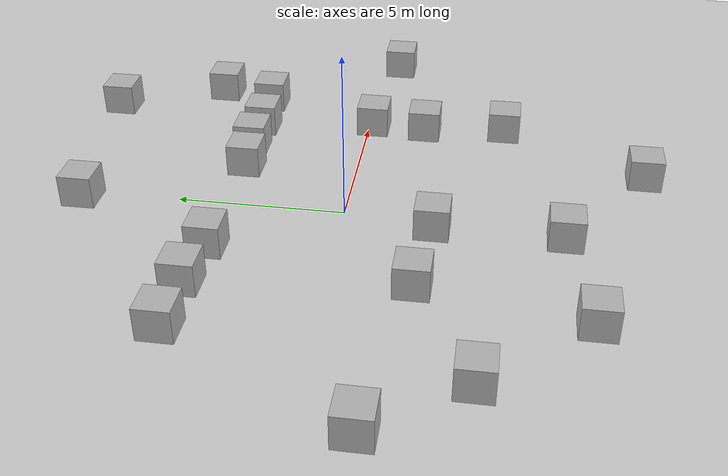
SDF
<sdf version='1.9'>
  <world name='plane'>
    <physics name='1ms' type='bullet'>
      <max_step_size>0.001</max_step_size>
      <real_time_factor>1</real_time_factor>
      <real_time_update_rate>1000</real_time_update_rate>
    </physics>
    <plugin name='gz::sim::systems::Physics' filename='gz-sim-physics-system'/>
    <plugin name='gz::sim::systems::UserCommands' filename='gz-sim-user-commands-system'/>
    <plugin name='gz::sim::systems::SceneBroadcaster' filename='gz-sim-scene-broadcaster-system'/>
    <gravity>0 0 -9.8</gravity>
    <magnetic_field>6e-06 2.3e-05 -4.2e-05</magnetic_field>
    <atmosphere type='adiabatic'/>
    <scene>
      <ambient>0.4 0.4 0.4 1</ambient>
      <background>0.7 0.7 0.7 1</background>
      <shadows>true</shadows>
    </scene>
    <model name='ground_plane'>
      <static>true</static>
      <link name='link'>
        <collision name='collision'>
          <geometry>
            <plane>
              <normal>0 0 1</normal>
              <size>100 100</size>
            </plane>
          </geometry>
          <surface>
            <friction>
              <ode/>
            </friction>
            <bounce/>
            <contact/>
          </surface>
        </collision>
        <visual name='visual'>
          <geometry>
            <plane>
              <normal>0 0 1</normal>
              <size>100 100</size>
            </plane>
          </geometry>
          <material>
            <ambient>0.8 0.8 0.8 1</ambient>
            <diffuse>0.8 0.8 0.8 1</diffuse>
            <specular>0.8 0.8 0.8 1</specular>
          </material>
        </visual>
        <pose>0 0 0 0 -0 0</pose>
        <inertial>
          <pose>0 0 0 0 -0 0</pose>
          <mass>1</mass>
          <inertia>
            <ixx>1</ixx>
            <ixy>0</ixy>
            <ixz>0</ixz>
            <iyy>1</iyy>
            <iyz>0</iyz>
            <izz>1</izz>
          </inertia>
        </inertial>
        <enable_wind>false</enable_wind>
      </link>
      <pose>0 0 0 0 -0 0</pose>
      <self_collide>false</self_collide>
    </model>
    <model name='box'>
      <pose>2.06186 3.42093 0.5 0 0 -0</pose>
      <link name='box_link'>
        <inertial>
          <inertia>
            <ixx>0.16666</ixx>
            <ixy>0</ixy>
            <ixz>0</ixz>
            <iyy>0.16666</iyy>
            <iyz>0</iyz>
            <izz>0.16666</izz>
          </inertia>
          <mass>1</mass>
          <pose>0 0 0 0 -0 0</pose>
        </inertial>
        <collision name='box_collision'>
          <geometry>
            <box>
              <size>1 1 1</size>
            </box>
          </geometry>
          <surface>
            <friction>
              <ode/>
            </friction>
            <bounce/>
            <contact/>
          </surface>
        </collision>
        <visual name='box_visual'>
          <geometry>
            <box>
              <size>1 1 1</size>
            </box>
          </geometry>
          <material>
            <ambient>0.3 0.3 0.3 1</ambient>
            <diffuse>0.7 0.7 0.7 1</diffuse>
            <specular>1 1 1 1</specular>
          </material>
        </visual>
        <pose>0 0 0 0 -0 0</pose>
        <enable_wind>false</enable_wind>
      </link>
      <static>false</static>
      <self_collide>false</self_collide>
    </model>
    <model name='box_0'>
      <pose>3.34366 3.53367 0.5 0 0 -0</pose>
      <link name='box_link'>
        <inertial>
          <inertia>
            <ixx>0.16666</ixx>
            <ixy>0</ixy>
            <ixz>0</ixz>
            <iyy>0.16666</iyy>
            <iyz>0</iyz>
            <izz>0.16666</izz>
          </inertia>
          <mass>1</mass>
          <pose>0 0 0 0 -0 0</pose>
        </inertial>
        <collision name='box_collision'>
          <geometry>
            <box>
              <size>1 1 1</size>
            </box>
          </geometry>
          <surface>
            <friction>
              <ode/>
            </friction>
            <bounce/>
            <contact/>
          </surface>
        </collision>
        <visual name='box_visual'>
          <geometry>
            <box>
              <size>1 1 1</size>
            </box>
          </geometry>
          <material>
            <ambient>0.3 0.3 0.3 1</ambient>
            <diffuse>0.7 0.7 0.7 1</diffuse>
            <specular>1 1 1 1</specular>
          </material>
        </visual>
        <pose>0 0 0 0 -0 0</pose>
        <enable_wind>false</enable_wind>
      </link>
      <static>false</static>
      <self_collide>false</self_collide>
    </model>
    <model name='box_1'>
      <pose>4.69897 3.49257 0.5 0 0 -0</pose>
      <link name='box_link'>
        <inertial>
          <inertia>
            <ixx>0.16666</ixx>
            <ixy>0</ixy>
            <ixz>0</ixz>
            <iyy>0.16666</iyy>
            <iyz>0</iyz>
            <izz>0.16666</izz>
          </inertia>
          <mass>1</mass>
          <pose>0 0 0 0 -0 0</pose>
        </inertial>
        <collision name='box_collision'>
          <geometry>
            <box>
              <size>1 1 1</size>
            </box>
          </geometry>
          <surface>
            <friction>
              <ode/>
            </friction>
            <bounce/>
            <contact/>
          </surface>
        </collision>
        <visual name='box_visual'>
          <geometry>
            <box>
              <size>1 1 1</size>
            </box>
          </geometry>
          <material>
            <ambient>0.3 0.3 0.3 1</ambient>
            <diffuse>0.7 0.7 0.7 1</diffuse>
            <specular>1 1 1 1</specular>
          </material>
        </visual>
        <pose>0 0 0 0 -0 0</pose>
        <enable_wind>false</enable_wind>
      </link>
      <static>false</static>
      <self_collide>false</self_collide>
    </model>
    <model name='box_2'>
      <pose>6.38673 3.57405 0.5 0 0 -0</pose>
      <link name='box_link'>
        <inertial>
          <inertia>
            <ixx>0.16666</ixx>
            <ixy>0</ixy>
            <ixz>0</ixz>
            <iyy>0.16666</iyy>
            <iyz>0</iyz>
            <izz>0.16666</izz>
          </inertia>
          <mass>1</mass>
          <pose>0 0 0 0 -0 0</pose>
        </inertial>
        <collision name='box_collision'>
          <geometry>
            <box>
              <size>1 1 1</size>
            </box>
          </geometry>
          <surface>
            <friction>
              <ode/>
            </friction>
            <bounce/>
            <contact/>
          </surface>
        </collision>
        <visual name='box_visual'>
          <geometry>
            <box>
              <size>1 1 1</size>
            </box>
          </geometry>
          <material>
            <ambient>0.3 0.3 0.3 1</ambient>
            <diffuse>0.7 0.7 0.7 1</diffuse>
            <specular>1 1 1 1</specular>
          </material>
        </visual>
        <pose>0 0 0 0 -0 0</pose>
        <enable_wind>false</enable_wind>
      </link>
      <static>false</static>
      <self_collide>false</self_collide>
    </model>
    <model name='box_3'>
      <pose>5.13493 -0.172301 0.5 0 0 -0</pose>
      <link name='box_link'>
        <inertial>
          <inertia>
            <ixx>0.16666</ixx>
            <ixy>0</ixy>
            <ixz>0</ixz>
            <iyy>0.16666</iyy>
            <iyz>0</iyz>
            <izz>0.16666</izz>
          </inertia>
          <mass>1</mass>
          <pose>0 0 0 0 -0 0</pose>
        </inertial>
        <collision name='box_collision'>
          <geometry>
            <box>
              <size>1 1 1</size>
            </box>
          </geometry>
          <surface>
            <friction>
              <ode/>
            </friction>
            <bounce/>
            <contact/>
          </surface>
        </collision>
        <visual name='box_visual'>
          <geometry>
            <box>
              <size>1 1 1</size>
            </box>
          </geometry>
          <material>
            <ambient>0.3 0.3 0.3 1</ambient>
            <diffuse>0.7 0.7 0.7 1</diffuse>
            <specular>1 1 1 1</specular>
          </material>
        </visual>
        <pose>0 0 0 0 -0 0</pose>
        <enable_wind>false</enable_wind>
      </link>
      <static>false</static>
      <self_collide>false</self_collide>
    </model>
    <model name='box_4'>
      <pose>5.02456 -1.87241 0.5 0 0 -0</pose>
      <link name='box_link'>
        <inertial>
          <inertia>
            <ixx>0.16666</ixx>
            <ixy>0</ixy>
            <ixz>0</ixz>
            <iyy>0.16666</iyy>
            <iyz>0</iyz>
            <izz>0.16666</izz>
          </inertia>
          <mass>1</mass>
          <pose>0 0 0 0 -0 0</pose>
        </inertial>
        <collision name='box_collision'>
          <geometry>
            <box>
              <size>1 1 1</size>
            </box>
          </geometry>
          <surface>
            <friction>
              <ode/>
            </friction>
            <bounce/>
            <contact/>
          </surface>
        </collision>
        <visual name='box_visual'>
          <geometry>
            <box>
              <size>1 1 1</size>
            </box>
          </geometry>
          <material>
            <ambient>0.3 0.3 0.3 1</ambient>
            <diffuse>0.7 0.7 0.7 1</diffuse>
            <specular>1 1 1 1</specular>
          </material>
        </visual>
        <pose>0 0 0 0 -0 0</pose>
        <enable_wind>false</enable_wind>
      </link>
      <static>false</static>
      <self_collide>false</self_collide>
    </model>
    <model name='box_5'>
      <pose>5.30932 -4.457 0.5 0 0 -0</pose>
      <link name='box_link'>
        <inertial>
          <inertia>
            <ixx>0.16666</ixx>
            <ixy>0</ixy>
            <ixz>0</ixz>
            <iyy>0.16666</iyy>
            <iyz>0</iyz>
            <izz>0.16666</izz>
          </inertia>
          <mass>1</mass>
          <pose>0 0 0 0 -0 0</pose>
        </inertial>
        <collision name='box_collision'>
          <geometry>
            <box>
              <size>1 1 1</size>
            </box>
          </geometry>
          <surface>
            <friction>
              <ode/>
            </friction>
            <bounce/>
            <contact/>
          </surface>
        </collision>
        <visual name='box_visual'>
          <geometry>
            <box>
              <size>1 1 1</size>
            </box>
          </geometry>
          <material>
            <ambient>0.3 0.3 0.3 1</ambient>
            <diffuse>0.7 0.7 0.7 1</diffuse>
            <specular>1 1 1 1</specular>
          </material>
        </visual>
        <pose>0 0 0 0 -0 0</pose>
        <enable_wind>false</enable_wind>
      </link>
      <static>false</static>
      <self_collide>false</self_collide>
    </model>
    <model name='box_6'>
      <pose>-2.25128 3.47947 0.5 0 0 -0</pose>
      <link name='box_link'>
        <inertial>
          <inertia>
            <ixx>0.16666</ixx>
            <ixy>0</ixy>
            <ixz>0</ixz>
            <iyy>0.16666</iyy>
            <iyz>0</iyz>
            <izz>0.16666</izz>
          </inertia>
          <mass>1</mass>
          <pose>0 0 0 0 -0 0</pose>
        </inertial>
        <collision name='box_collision'>
          <geometry>
            <box>
              <size>1 1 1</size>
            </box>
          </geometry>
          <surface>
            <friction>
              <ode/>
            </friction>
            <bounce/>
            <contact/>
          </surface>
        </collision>
        <visual name='box_visual'>
          <geometry>
            <box>
              <size>1 1 1</size>
            </box>
          </geometry>
          <material>
            <ambient>0.3 0.3 0.3 1</ambient>
            <diffuse>0.7 0.7 0.7 1</diffuse>
            <specular>1 1 1 1</specular>
          </material>
        </visual>
        <pose>0 0 0 0 -0 0</pose>
        <enable_wind>false</enable_wind>
      </link>
      <static>false</static>
      <self_collide>false</self_collide>
    </model>
    <model name='box_7'>
      <pose>-3.29082 -2.3578 0.5 0 0 -0</pose>
      <link name='box_link'>
        <inertial>
          <inertia>
            <ixx>0.16666</ixx>
            <ixy>0</ixy>
            <ixz>0</ixz>
            <iyy>0.16666</iyy>
            <iyz>0</iyz>
            <izz>0.16666</izz>
          </inertia>
          <mass>1</mass>
          <pose>0 0 0 0 -0 0</pose>
        </inertial>
        <collision name='box_collision'>
          <geometry>
            <box>
              <size>1 1 1</size>
            </box>
          </geometry>
          <surface>
            <friction>
              <ode/>
            </friction>
            <bounce/>
            <contact/>
          </surface>
        </collision>
        <visual name='box_visual'>
          <geometry>
            <box>
              <size>1 1 1</size>
            </box>
          </geometry>
          <material>
            <ambient>0.3 0.3 0.3 1</ambient>
            <diffuse>0.7 0.7 0.7 1</diffuse>
            <specular>1 1 1 1</specular>
          </material>
        </visual>
        <pose>0 0 0 0 -0 0</pose>
        <enable_wind>false</enable_wind>
      </link>
      <static>false</static>
      <self_collide>false</self_collide>
    </model>
    <model name='box_8'>
      <pose>-0.580936 -6.37085 0.5 0 0 -0</pose>
      <link name='box_link'>
        <inertial>
          <inertia>
            <ixx>0.16666</ixx>
            <ixy>0</ixy>
            <ixz>0</ixz>
            <iyy>0.16666</iyy>
            <iyz>0</iyz>
            <izz>0.16666</izz>
          </inertia>
          <mass>1</mass>
          <pose>0 0 0 0 -0 0</pose>
        </inertial>
        <collision name='box_collision'>
          <geometry>
            <box>
              <size>1 1 1</size>
            </box>
          </geometry>
          <surface>
            <friction>
              <ode/>
            </friction>
            <bounce/>
            <contact/>
          </surface>
        </collision>
        <visual name='box_visual'>
          <geometry>
            <box>
              <size>1 1 1</size>
            </box>
          </geometry>
          <material>
            <ambient>0.3 0.3 0.3 1</ambient>
            <diffuse>0.7 0.7 0.7 1</diffuse>
            <specular>1 1 1 1</specular>
          </material>
        </visual>
        <pose>0 0 0 0 -0 0</pose>
        <enable_wind>false</enable_wind>
      </link>
      <static>false</static>
      <self_collide>false</self_collide>
    </model>
    <model name='box_9'>
      <pose>9.59522 -0.574303 0.5 0 0 -0</pose>
      <link name='box_link'>
        <inertial>
          <inertia>
            <ixx>0.16666</ixx>
            <ixy>0</ixy>
            <ixz>0</ixz>
            <iyy>0.16666</iyy>
            <iyz>0</iyz>
            <izz>0.16666</izz>
          </inertia>
          <mass>1</mass>
          <pose>0 0 0 0 -0 0</pose>
        </inertial>
        <collision name='box_collision'>
          <geometry>
            <box>
              <size>1 1 1</size>
            </box>
          </geometry>
          <surface>
            <friction>
              <ode/>
            </friction>
            <bounce/>
            <contact/>
          </surface>
        </collision>
        <visual name='box_visual'>
          <geometry>
            <box>
              <size>1 1 1</size>
            </box>
          </geometry>
          <material>
            <ambient>0.3 0.3 0.3 1</ambient>
            <diffuse>0.7 0.7 0.7 1</diffuse>
            <specular>1 1 1 1</specular>
          </material>
        </visual>
        <pose>0 0 0 0 -0 0</pose>
        <enable_wind>false</enable_wind>
      </link>
      <static>false</static>
      <self_collide>false</self_collide>
    </model>
    <model name='box_10'>
      <pose>-0.340738 7.84546 0.5 0 0 -0</pose>
      <link name='box_link'>
        <inertial>
          <inertia>
            <ixx>0.16666</ixx>
            <ixy>0</ixy>
            <ixz>0</ixz>
            <iyy>0.16666</iyy>
            <iyz>0</iyz>
            <izz>0.16666</izz>
          </inertia>
          <mass>1</mass>
          <pose>0 0 0 0 -0 0</pose>
        </inertial>
        <collision name='box_collision'>
          <geometry>
            <box>
              <size>1 1 1</size>
            </box>
          </geometry>
          <surface>
            <friction>
              <ode/>
            </friction>
            <bounce/>
            <contact/>
          </surface>
        </collision>
        <visual name='box_visual'>
          <geometry>
            <box>
              <size>1 1 1</size>
            </box>
          </geometry>
          <material>
            <ambient>0.3 0.3 0.3 1</ambient>
            <diffuse>0.7 0.7 0.7 1</diffuse>
            <specular>1 1 1 1</specular>
          </material>
        </visual>
        <pose>0 0 0 0 -0 0</pose>
        <enable_wind>false</enable_wind>
      </link>
      <static>false</static>
      <self_collide>false</self_collide>
    </model>
    <model name='box_11'>
      <pose>-3.95452 3.67244 0.5 -0 0 0</pose>
      <link name='box_link'>
        <inertial>
          <inertia>
            <ixx>0.16666</ixx>
            <ixy>0</ixy>
            <ixz>0</ixz>
            <iyy>0.16666</iyy>
            <iyz>0</iyz>
            <izz>0.16666</izz>
          </inertia>
          <mass>1</mass>
          <pose>0 0 0 0 -0 0</pose>
        </inertial>
        <collision name='box_collision'>
          <geometry>
            <box>
              <size>1 1 1</size>
            </box>
          </geometry>
          <surface>
            <friction>
              <ode/>
            </friction>
            <bounce/>
            <contact/>
          </surface>
        </collision>
        <visual name='box_visual'>
          <geometry>
            <box>
              <size>1 1 1</size>
            </box>
          </geometry>
          <material>
            <ambient>0.3 0.3 0.3 1</ambient>
            <diffuse>0.7 0.7 0.7 1</diffuse>
            <specular>1 1 1 1</specular>
          </material>
        </visual>
        <pose>0 0 0 0 -0 0</pose>
        <enable_wind>false</enable_wind>
      </link>
      <static>false</static>
      <self_collide>false</self_collide>
    </model>
    <model name='box_12'>
      <pose>-5.79844 3.68114 0.5 0 0 -0</pose>
      <link name='box_link'>
        <inertial>
          <inertia>
            <ixx>0.16666</ixx>
            <ixy>0</ixy>
            <ixz>0</ixz>
            <iyy>0.16666</iyy>
            <iyz>0</iyz>
            <izz>0.16666</izz>
          </inertia>
          <mass>1</mass>
          <pose>0 0 0 0 -0 0</pose>
        </inertial>
        <collision name='box_collision'>
          <geometry>
            <box>
              <size>1 1 1</size>
            </box>
          </geometry>
          <surface>
            <friction>
              <ode/>
            </friction>
            <bounce/>
            <contact/>
          </surface>
        </collision>
        <visual name='box_visual'>
          <geometry>
            <box>
              <size>1 1 1</size>
            </box>
          </geometry>
          <material>
            <ambient>0.3 0.3 0.3 1</ambient>
            <diffuse>0.7 0.7 0.7 1</diffuse>
            <specular>1 1 1 1</specular>
          </material>
        </visual>
        <pose>0 0 0 0 -0 0</pose>
        <enable_wind>false</enable_wind>
      </link>
      <static>false</static>
      <self_collide>false</self_collide>
    </model>
    <model name='box_13'>
      <pose>-8.59162 -1.66683 0.5 0 0 -0</pose>
      <link name='box_link'>
        <inertial>
          <inertia>
            <ixx>0.16666</ixx>
            <ixy>0</ixy>
            <ixz>0</ixz>
            <iyy>0.16666</iyy>
            <iyz>0</iyz>
            <izz>0.16666</izz>
          </inertia>
          <mass>1</mass>
          <pose>0 0 0 0 -0 0</pose>
        </inertial>
        <collision name='box_collision'>
          <geometry>
            <box>
              <size>1 1 1</size>
            </box>
          </geometry>
          <surface>
            <friction>
              <ode/>
            </friction>
            <bounce/>
            <contact/>
          </surface>
        </collision>
        <visual name='box_visual'>
          <geometry>
            <box>
              <size>1 1 1</size>
            </box>
          </geometry>
          <material>
            <ambient>0.3 0.3 0.3 1</ambient>
            <diffuse>0.7 0.7 0.7 1</diffuse>
            <specular>1 1 1 1</specular>
          </material>
        </visual>
        <pose>0 0 0 0 -0 0</pose>
        <enable_wind>false</enable_wind>
      </link>
      <static>false</static>
      <self_collide>false</self_collide>
    </model>
    <model name='box_14'>
      <pose>-6.7488 -4.18744 0.5 0 0 -0</pose>
      <link name='box_link'>
        <inertial>
          <inertia>
            <ixx>0.16666</ixx>
            <ixy>0</ixy>
            <ixz>0</ixz>
            <iyy>0.16666</iyy>
            <iyz>0</iyz>
            <izz>0.16666</izz>
          </inertia>
          <mass>1</mass>
          <pose>0 0 0 0 -0 0</pose>
        </inertial>
        <collision name='box_collision'>
          <geometry>
            <box>
              <size>1 1 1</size>
            </box>
          </geometry>
          <surface>
            <friction>
              <ode/>
            </friction>
            <bounce/>
            <contact/>
          </surface>
        </collision>
        <visual name='box_visual'>
          <geometry>
            <box>
              <size>1 1 1</size>
            </box>
          </geometry>
          <material>
            <ambient>0.3 0.3 0.3 1</ambient>
            <diffuse>0.7 0.7 0.7 1</diffuse>
            <specular>1 1 1 1</specular>
          </material>
        </visual>
        <pose>0 0 0 0 -0 0</pose>
        <enable_wind>false</enable_wind>
      </link>
      <static>false</static>
      <self_collide>false</self_collide>
    </model>
    <model name='box_15'>
      <pose>-4.20966 -7.09663 0.5 0 0 -0</pose>
      <link name='box_link'>
        <inertial>
          <inertia>
            <ixx>0.16666</ixx>
            <ixy>0</ixy>
            <ixz>0</ixz>
            <iyy>0.16666</iyy>
            <iyz>0</iyz>
            <izz>0.16666</izz>
          </inertia>
          <mass>1</mass>
          <pose>0 0 0 0 -0 0</pose>
        </inertial>
        <collision name='box_collision'>
          <geometry>
            <box>
              <size>1 1 1</size>
            </box>
          </geometry>
          <surface>
            <friction>
              <ode/>
            </friction>
            <bounce/>
            <contact/>
          </surface>
        </collision>
        <visual name='box_visual'>
          <geometry>
            <box>
              <size>1 1 1</size>
            </box>
          </geometry>
          <material>
            <ambient>0.3 0.3 0.3 1</ambient>
            <diffuse>0.7 0.7 0.7 1</diffuse>
            <specular>1 1 1 1</specular>
          </material>
        </visual>
        <pose>0 0 0 0 -0 0</pose>
        <enable_wind>false</enable_wind>
      </link>
      <static>false</static>
      <self_collide>false</self_collide>
    </model>
    <model name='box_16'>
      <pose>5.45403 8.61131 0.5 0 0 -0</pose>
      <link name='box_link'>
        <inertial>
          <inertia>
            <ixx>0.16666</ixx>
            <ixy>0</ixy>
            <ixz>0</ixz>
            <iyy>0.16666</iyy>
            <iyz>0</iyz>
            <izz>0.16666</izz>
          </inertia>
          <mass>1</mass>
          <pose>0 0 0 0 -0 0</pose>
        </inertial>
        <collision name='box_collision'>
          <geometry>
            <box>
              <size>1 1 1</size>
            </box>
          </geometry>
          <surface>
            <friction>
              <ode/>
            </friction>
            <bounce/>
            <contact/>
          </surface>
        </collision>
        <visual name='box_visual'>
          <geometry>
            <box>
              <size>1 1 1</size>
            </box>
          </geometry>
          <material>
            <ambient>0.3 0.3 0.3 1</ambient>
            <diffuse>0.7 0.7 0.7 1</diffuse>
            <specular>1 1 1 1</specular>
          </material>
        </visual>
        <pose>0 0 0 0 -0 0</pose>
        <enable_wind>false</enable_wind>
      </link>
      <static>false</static>
      <self_collide>false</self_collide>
    </model>
    <model name='box_17'>
      <pose>6.91845 5.3003 0.5 0 0 -0</pose>
      <link name='box_link'>
        <inertial>
          <inertia>
            <ixx>0.16666</ixx>
            <ixy>0</ixy>
            <ixz>0</ixz>
            <iyy>0.16666</iyy>
            <iyz>0</iyz>
            <izz>0.16666</izz>
          </inertia>
          <mass>1</mass>
          <pose>0 0 0 0 -0 0</pose>
        </inertial>
        <collision name='box_collision'>
          <geometry>
            <box>
              <size>1 1 1</size>
            </box>
          </geometry>
          <surface>
            <friction>
              <ode/>
            </friction>
            <bounce/>
            <contact/>
          </surface>
        </collision>
        <visual name='box_visual'>
          <geometry>
            <box>
              <size>1 1 1</size>
            </box>
          </geometry>
          <material>
            <ambient>0.3 0.3 0.3 1</ambient>
            <diffuse>0.7 0.7 0.7 1</diffuse>
            <specular>1 1 1 1</specular>
          </material>
        </visual>
        <pose>0 0 0 0 -0 0</pose>
        <enable_wind>false</enable_wind>
      </link>
      <static>false</static>
      <self_collide>false</self_collide>
    </model>
    <model name='box_18'>
      <pose>-0.566696 -2.62832 0.5 0 0 -0</pose>
      <link name='box_link'>
        <inertial>
          <inertia>
            <ixx>0.16666</ixx>
            <ixy>0</ixy>
            <ixz>0</ixz>
            <iyy>0.16666</iyy>
            <iyz>0</iyz>
            <izz>0.16666</izz>
          </inertia>
          <mass>1</mass>
          <pose>0 0 0 0 -0 0</pose>
        </inertial>
        <collision name='box_collision'>
          <geometry>
            <box>
              <size>1 1 1</size>
            </box>
          </geometry>
          <surface>
            <friction>
              <ode/>
            </friction>
            <bounce/>
            <contact/>
          </surface>
        </collision>
        <visual name='box_visual'>
          <geometry>
            <box>
              <size>1 1 1</size>
            </box>
          </geometry>
          <material>
            <ambient>0.3 0.3 0.3 1</ambient>
            <diffuse>0.7 0.7 0.7 1</diffuse>
            <specular>1 1 1 1</specular>
          </material>
        </visual>
        <pose>0 0 0 0 -0 0</pose>
        <enable_wind>false</enable_wind>
      </link>
      <static>false</static>
      <self_collide>false</self_collide>
    </model>
    <model name='box_19'>
      <pose>2.9537 -8.78853 0.5 0 0 -0</pose>
      <link name='box_link'>
        <inertial>
          <inertia>
            <ixx>0.16666</ixx>
            <ixy>0</ixy>
            <ixz>0</ixz>
            <iyy>0.16666</iyy>
            <iyz>0</iyz>
            <izz>0.16666</izz>
          </inertia>
          <mass>1</mass>
          <pose>0 0 0 0 -0 0</pose>
        </inertial>
        <collision name='box_collision'>
          <geometry>
            <box>
              <size>1 1 1</size>
            </box>
          </geometry>
          <surface>
            <friction>
              <ode/>
            </friction>
            <bounce/>
            <contact/>
          </surface>
        </collision>
        <visual name='box_visual'>
          <geometry>
            <box>
              <size>1 1 1</size>
            </box>
          </geometry>
          <material>
            <ambient>0.3 0.3 0.3 1</ambient>
            <diffuse>0.7 0.7 0.7 1</diffuse>
            <specular>1 1 1 1</specular>
          </material>
        </visual>
        <pose>0 0 0 0 -0 0</pose>
        <enable_wind>false</enable_wind>
      </link>
      <static>false</static>
      <self_collide>false</self_collide>
    </model>
    <light name='sun' type='directional'>
      <pose>0 0 10 0 -0 0</pose>
      <cast_shadows>true</cast_shadows>
      <intensity>1</intensity>
      <direction>-0.5 0.1 -0.9</direction>
      <diffuse>0.8 0.8 0.8 1</diffuse>
      <specular>0.2 0.2 0.2 1</specular>
      <attenuation>
        <range>1000</range>
        <linear>0.01</linear>
        <constant>0.90000000000000002</constant>
        <quadratic>0.001</quadratic>
      </attenuation>
      <spot>
        <inner_angle>0</inner_angle>
        <outer_angle>0</outer_angle>
        <falloff>0</falloff>
      </spot>
    </light>
  </world>
</sdf>
